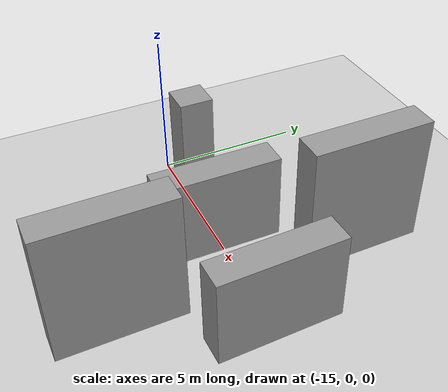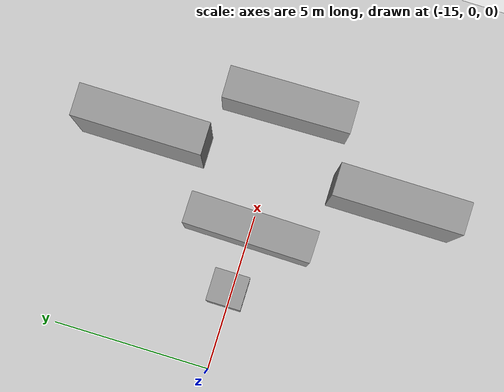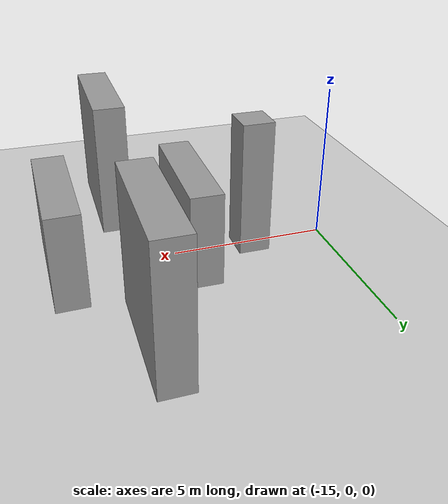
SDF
<sdf version="1.6">
 <world name="default">
  <light name="sun" type="directional">
   <pose>0 0 10 0 -0 0</pose>
   <diffuse>0.8 0.8 0.8 1</diffuse>
   <specular>0.2 0.2 0.2 1</specular>
   <attenuation>
    <range>1000</range>
    <constant>0.9</constant>
    <linear>0.01</linear>
    <quadratic>0.001</quadratic>
   </attenuation>
   <direction>-0.5 0.1 -0.9</direction>
  </light>
  <model name="ground_plane">
   <static>1</static>
   <link name="link">
    <collision name="collision">
     <geometry><plane><normal>0 0 1</normal><size>100 100</size></plane></geometry>
     <surface>
      <contact><collide_bitmask>65535</collide_bitmask></contact>
      <friction><ode><mu>100</mu><mu2>50</mu2></ode></friction>
     </surface>
    </collision>
    <visual name="visual">
     <cast_shadows>0</cast_shadows>
     <geometry><plane><normal>0 0 1</normal><size>100 100</size></plane></geometry>
     <material>
      <script><uri>file://media/materials/scripts/gazebo.material</uri><name>Gazebo/Grey</name></script>
     </material>
    </visual>
   </link>
  </model>
  <gravity>0 0 -9.8</gravity>
  <magnetic_field>6e-06 2.3e-05 -4.2e-05</magnetic_field>
  <atmosphere type="adiabatic"/>
  <physics name="default_physics" default="0" type="ode">
   <max_step_size>0.001</max_step_size>
   <real_time_factor>1</real_time_factor>
   <real_time_update_rate>1000</real_time_update_rate>
  </physics>
  <scene><ambient>0.4 0.4 0.4 1</ambient><background>0.7 0.7 0.7 1</background><shadows>1</shadows></scene>
  <audio><device>default</device></audio>
  <spherical_coordinates>
   <surface_model>EARTH_WGS84</surface_model>
   <latitude_deg>0</latitude_deg>
   <longitude_deg>0</longitude_deg>
   <elevation>0</elevation>
   <heading_deg>0</heading_deg>
  </spherical_coordinates>
  <model name="unit_box">
   <pose>-6.50463 -0.017123 1.49794 -3.7e-05 1e-06 0.018503</pose>
   <link name="link">
    <inertial>
     <mass>1</mass>
     <inertia>
      <ixx>0.166667</ixx>
      <ixy>0</ixy>
      <ixz>0</ixz>
      <iyy>0.166667</iyy>
      <iyz>0</iyz>
      <izz>0.166667</izz>
     </inertia>
    </inertial>
    <collision name="collision"><geometry><box><size>1 4.00203 2.99602</size></box></geometry></collision>
    <visual name="visual">
     <geometry><box><size>1 4.00203 2.99602</size></box></geometry>
     <material>
      <script><name>Gazebo/Grey</name><uri>file://media/materials/scripts/gazebo.material</uri></script>
     </material>
    </visual>
   </link>
  </model>
  <model name="unit_box_clone_0">
   <pose>-8.51452 3.98734 2.18835 1e-06 -0 0.000188</pose>
   <link name="link">
    <inertial>
     <mass>1</mass>
     <inertia>
      <ixx>0.166667</ixx>
      <ixy>0</ixy>
      <ixz>0</ixz>
      <iyy>0.166667</iyy>
      <iyz>0</iyz>
      <izz>0.166667</izz>
     </inertia>
    </inertial>
    <collision name="collision"><geometry><box><size>1 4.00203 4.37671</size></box></geometry></collision>
    <visual name="visual">
     <geometry><box><size>1 4.00203 4.37671</size></box></geometry>
     <material>
      <script><name>Gazebo/Grey</name><uri>file://media/materials/scripts/gazebo.material</uri></script>
     </material>
    </visual>
   </link>
  </model>
  <model name="unit_box_clone_0_clone">
   <pose>-8.4992 -4.00238 2.18834 1e-06 -0 -7.1e-05</pose>
   <link name="link">
    <inertial>
     <mass>1</mass>
     <inertia>
      <ixx>0.166667</ixx>
      <ixy>0</ixy>
      <ixz>0</ixz>
      <iyy>0.166667</iyy>
      <iyz>0</iyz>
      <izz>0.166667</izz>
     </inertia>
    </inertial>
    <collision name="collision"><geometry><box><size>1 4.00203 4.37669</size></box></geometry></collision>
    <visual name="visual">
     <geometry><box><size>1 4.00203 4.37669</size></box></geometry>
     <material>
      <script><name>Gazebo/Grey</name><uri>file://media/materials/scripts/gazebo.material</uri></script>
     </material>
    </visual>
   </link>
  </model>
  <model name="unit_box_clone">
   <pose>-10.5031 -0.007743 1.49794 3.7e-05 1e-06 -0.013296</pose>
   <link name="link">
    <inertial>
     <mass>1</mass>
     <inertia>
      <ixx>0.166667</ixx>
      <ixy>0</ixy>
      <ixz>0</ixz>
      <iyy>0.166667</iyy>
      <iyz>0</iyz>
      <izz>0.166667</izz>
     </inertia>
    </inertial>
    <collision name="collision"><geometry><box><size>1 4.00203 2.99603</size></box></geometry></collision>
    <visual name="visual">
     <geometry><box><size>1 4.00203 2.99603</size></box></geometry>
     <material>
      <script><name>Gazebo/Grey</name><uri>file://media/materials/scripts/gazebo.material</uri></script>
     </material>
    </visual>
   </link>
  </model>
  <model name="unit_box_clone_0_clone_0">
   <pose>-12.4941 0.082 2.18834 -0 -0 -0.000306</pose>
   <link name="link">
    <inertial>
     <mass>1</mass>
     <inertia>
      <ixx>0.166667</ixx>
      <ixy>0</ixy>
      <ixz>0</ixz>
      <iyy>0.166667</iyy>
      <iyz>0</iyz>
      <izz>0.166667</izz>
     </inertia>
    </inertial>
    <collision name="collision"><geometry><box><size>1 1.05307 4.37669</size></box></geometry></collision>
    <visual name="visual">
     <geometry><box><size>1 1.05307 4.37669</size></box></geometry>
     <material>
      <script><name>Gazebo/Grey</name><uri>file://media/materials/scripts/gazebo.material</uri></script>
     </material>
    </visual>
   </link>
  </model>
 </world>
</sdf>
